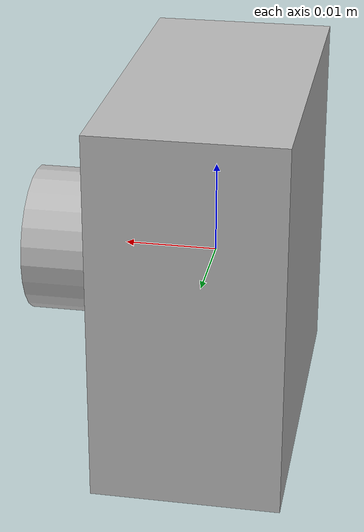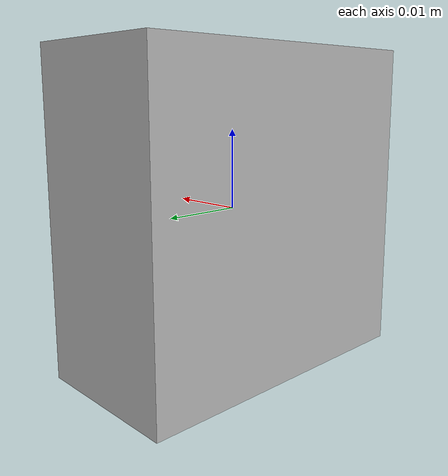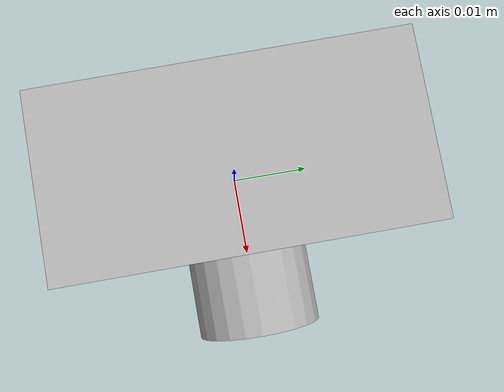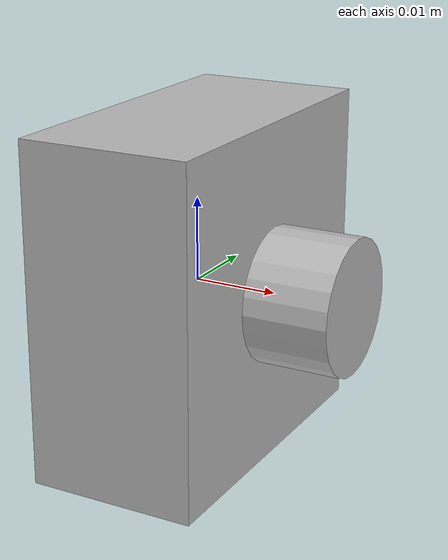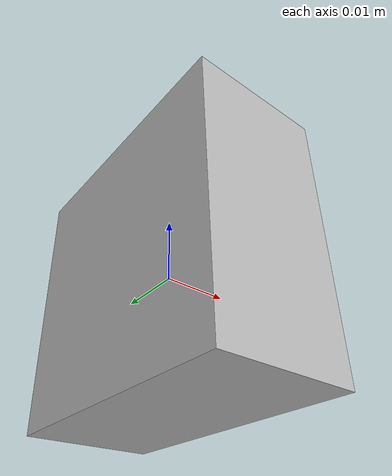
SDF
<?xml version="1.0" encoding="UTF-8"?>
<sdf version='1.9'>
  <model name='seg_cam'>
    <pose>0 0 0 0 0 0</pose>
    <self_collide>false</self_collide>
    <static>false</static>
    <link name="camera_link">
      <inertial>
        <pose>0.03 0.03 0.03 0 0 0</pose>
        <mass>0.050</mass>
        <inertia>
          <ixx>0.00004</ixx>
          <ixy>0</ixy>
          <ixz>0</ixz>
          <iyy>0.00004</iyy>
          <iyz>0</iyz>
          <izz>0.00004</izz>
        </inertia>
      </inertial>
      <visual name="seg_cam/visual/housing">
        <geometry>
          <box>
            <size>0.02 0.04 0.04</size>
          </box>
        </geometry>
      </visual>
      <visual name="seg_cam/visual/lens">
        <pose>0.015 0 0 0 1.5707 0</pose>
        <geometry>
          <cylinder>
            <radius>0.008</radius>
            <length>0.01</length>
          </cylinder>
        </geometry>
      </visual>
      <sensor name="segmentation_camera" type="segmentation">
        <gz_frame_id>camera_link</gz_frame_id>
        <pose>0 0 0 0 0 0</pose>
        <topic>seg_cam</topic>
        <camera>
          <segmentation_type>semantic</segmentation_type>
          <horizontal_fov>1.74</horizontal_fov>
          <image>
            <width>320</width>
            <height>240</height>
          </image>
          <clip>
            <near>0.1</near>
            <far>3000</far>
          </clip>
        </camera>
        <always_on>1</always_on>
        <update_rate>10</update_rate>
        <visualize>true</visualize>
      </sensor>
      <gravity>true</gravity>
      <velocity_decay />
    </link>
  </model>
</sdf>
